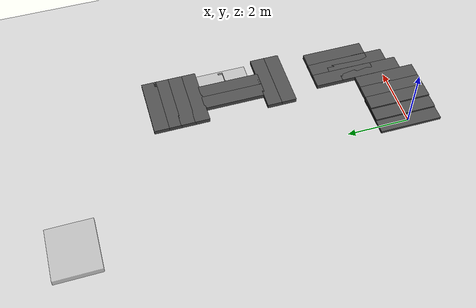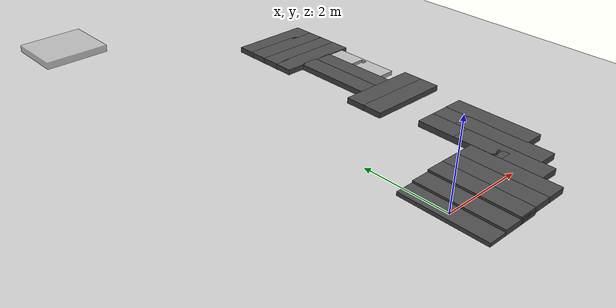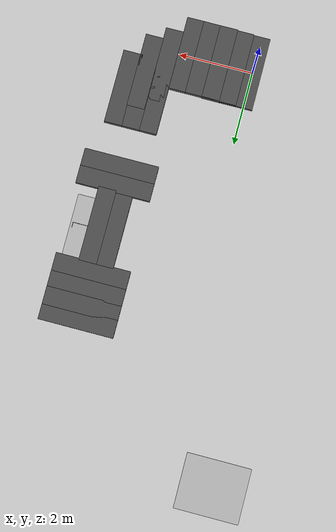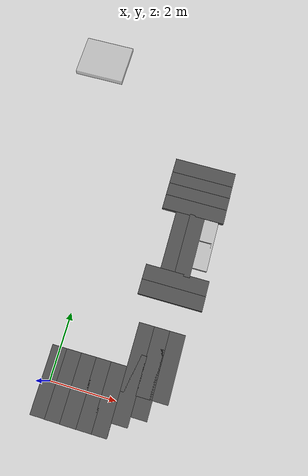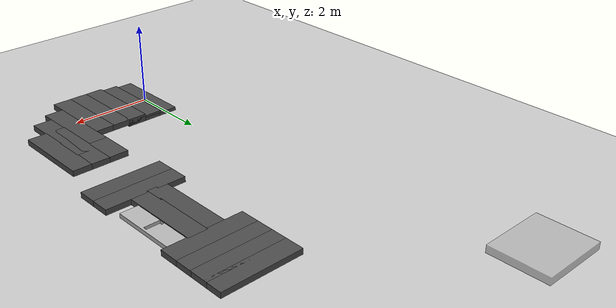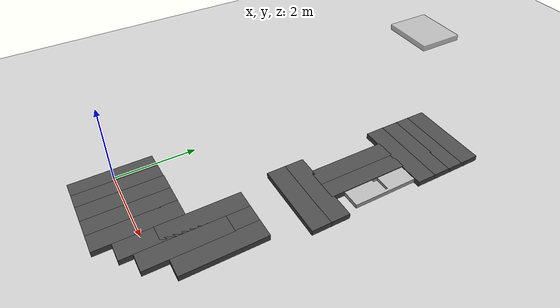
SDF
<sdf version="1.6">
 <world name="default">
  <light name="sun" type="directional">
   <pose>0 0 10 0 -0 0</pose>
   <diffuse>0.8 0.8 0.8 1</diffuse>
   <specular>0.2 0.2 0.2 1</specular>
   <attenuation>
    <range>1000</range>
    <constant>0.9</constant>
    <linear>0.01</linear>
    <quadratic>0.001</quadratic>
   </attenuation>
   <direction>-0.5 0.1 -0.9</direction>
  </light>
  <model name="ground_plane">
   <static>1</static>
   <link name="link">
    <collision name="collision">
     <geometry><plane><normal>0 0 1</normal><size>100 100</size></plane></geometry>
     <surface>
      <contact><collide_bitmask>65535</collide_bitmask></contact>
      <friction><ode><mu>100</mu><mu2>50</mu2></ode></friction>
     </surface>
    </collision>
    <visual name="visual">
     <cast_shadows>0</cast_shadows>
     <geometry><plane><normal>0 0 1</normal><size>100 100</size></plane></geometry>
     <material>
      <script><uri>file://media/materials/scripts/gazebo.material</uri><name>Gazebo/Grey</name></script>
     </material>
    </visual>
   </link>
  </model>
  <scene><ambient>0.4 0.4 0.4 1</ambient><background>0.7 0.7 0.7 1</background><shadows>1</shadows></scene>
  <audio><device>default</device></audio>
  <spherical_coordinates>
   <surface_model>EARTH_WGS84</surface_model>
   <latitude_deg>0</latitude_deg>
   <longitude_deg>0</longitude_deg>
   <elevation>0</elevation>
   <heading_deg>0</heading_deg>
  </spherical_coordinates>
  <model name="asphalt_pallet">
   <static>1</static>
   <link name="link">
    <collision name="collision"><geometry><box><size>0.48 2 0.14</size></box></geometry></collision>
    <visual name="visual">
     <cast_shadows>0</cast_shadows>
     <geometry><box><size>0.48 2 0.14</size></box></geometry>
     <material>
      <script>
       <uri>model://asphalt_plane/materials/scripts</uri>
       <uri>model://asphalt_plane/materials/textures</uri>
       <name>vrc/asphalt</name>
      </script>
     </material>
    </visual>
   </link>
  </model>
  <model name="asphalt_pallet_0">
   <static>1</static>
   <link name="link">
    <collision name="collision"><geometry><box><size>0.48 2 0.14</size></box></geometry></collision>
    <visual name="visual">
     <cast_shadows>0</cast_shadows>
     <geometry><box><size>0.48 2 0.14</size></box></geometry>
     <material>
      <script>
       <uri>model://asphalt_plane/materials/scripts</uri>
       <uri>model://asphalt_plane/materials/textures</uri>
       <name>vrc/asphalt</name>
      </script>
     </material>
    </visual>
   </link>
   <pose>0.9 0 0.05 0 -0 0</pose>
  </model>
  <model name="asphalt_pallet_1">
   <static>1</static>
   <link name="link">
    <collision name="collision"><geometry><box><size>0.48 2 0.14</size></box></geometry></collision>
    <visual name="visual">
     <cast_shadows>0</cast_shadows>
     <geometry><box><size>0.48 2 0.14</size></box></geometry>
     <material>
      <script>
       <uri>model://asphalt_plane/materials/scripts</uri>
       <uri>model://asphalt_plane/materials/textures</uri>
       <name>vrc/asphalt</name>
      </script>
     </material>
    </visual>
   </link>
   <pose>0.45 0 0 0 -0 0</pose>
  </model>
  <model name="asphalt_pallet_2">
   <static>1</static>
   <link name="link">
    <collision name="collision"><geometry><box><size>0.48 2 0.14</size></box></geometry></collision>
    <visual name="visual">
     <cast_shadows>0</cast_shadows>
     <geometry><box><size>0.48 2 0.14</size></box></geometry>
     <material>
      <script>
       <uri>model://asphalt_plane/materials/scripts</uri>
       <uri>model://asphalt_plane/materials/textures</uri>
       <name>vrc/asphalt</name>
      </script>
     </material>
    </visual>
   </link>
   <pose>0.446555 -0.000448 0.05 0 -0 0</pose>
  </model>
  <model name="asphalt_pallet_3">
   <static>1</static>
   <link name="link">
    <collision name="collision"><geometry><box><size>0.48 2 0.14</size></box></geometry></collision>
    <visual name="visual">
     <cast_shadows>0</cast_shadows>
     <geometry><box><size>0.48 2 0.14</size></box></geometry>
     <material>
      <script>
       <uri>model://asphalt_plane/materials/scripts</uri>
       <uri>model://asphalt_plane/materials/textures</uri>
       <name>vrc/asphalt</name>
      </script>
     </material>
    </visual>
   </link>
   <pose>0.9 0 0 0 -0 0</pose>
  </model>
  <model name="asphalt_pallet_4">
   <static>1</static>
   <link name="link">
    <collision name="collision"><geometry><box><size>0.48 2 0.14</size></box></geometry></collision>
    <visual name="visual">
     <cast_shadows>0</cast_shadows>
     <geometry><box><size>0.48 2 0.14</size></box></geometry>
     <material>
      <script>
       <uri>model://asphalt_plane/materials/scripts</uri>
       <uri>model://asphalt_plane/materials/textures</uri>
       <name>vrc/asphalt</name>
      </script>
     </material>
    </visual>
   </link>
   <pose>0.9 0 0.1 0 -0 0</pose>
  </model>
  <model name="asphalt_pallet_5">
   <static>1</static>
   <link name="link">
    <collision name="collision"><geometry><box><size>0.48 2 0.14</size></box></geometry></collision>
    <visual name="visual">
     <cast_shadows>0</cast_shadows>
     <geometry><box><size>0.48 2 0.14</size></box></geometry>
     <material>
      <script>
       <uri>model://asphalt_plane/materials/scripts</uri>
       <uri>model://asphalt_plane/materials/textures</uri>
       <name>vrc/asphalt</name>
      </script>
     </material>
    </visual>
   </link>
   <pose>1.35 0 0.1 0 -0 0</pose>
  </model>
  <model name="asphalt_pallet_5_clone">
   <static>1</static>
   <link name="link">
    <collision name="collision"><geometry><box><size>0.48 2 0.14</size></box></geometry></collision>
    <visual name="visual">
     <cast_shadows>0</cast_shadows>
     <geometry><box><size>0.48 2 0.14</size></box></geometry>
     <material>
      <script>
       <uri>model://asphalt_plane/materials/scripts</uri>
       <uri>model://asphalt_plane/materials/textures</uri>
       <name>vrc/asphalt</name>
      </script>
     </material>
    </visual>
   </link>
   <pose>1.8 0 0.1 0 -0 0</pose>
  </model>
  <model name="asphalt_pallet_5_clone_clone">
   <static>1</static>
   <link name="link">
    <collision name="collision"><geometry><box><size>0.48 2 0.14</size></box></geometry></collision>
    <visual name="visual">
     <cast_shadows>0</cast_shadows>
     <geometry><box><size>0.48 2 0.14</size></box></geometry>
     <material>
      <script>
       <uri>model://asphalt_plane/materials/scripts</uri>
       <uri>model://asphalt_plane/materials/textures</uri>
       <name>vrc/asphalt</name>
      </script>
     </material>
    </visual>
   </link>
   <pose>2.27623 0.422107 0.1 0 -0 0</pose>
  </model>
  <model name="asphalt_pallet_5_clone_clone_0">
   <static>1</static>
   <link name="link">
    <collision name="collision"><geometry><box><size>0.48 2 0.14</size></box></geometry></collision>
    <visual name="visual">
     <cast_shadows>0</cast_shadows>
     <geometry><box><size>0.48 2 0.14</size></box></geometry>
     <material>
      <script>
       <uri>model://asphalt_plane/materials/scripts</uri>
       <uri>model://asphalt_plane/materials/textures</uri>
       <name>vrc/asphalt</name>
      </script>
     </material>
    </visual>
   </link>
   <pose>2.74907 0.725266 0.1 0 -0 0</pose>
  </model>
  <model name="asphalt_pallet_5_clone_clone_1">
   <static>1</static>
   <link name="link">
    <collision name="collision"><geometry><box><size>0.48 2 0.14</size></box></geometry></collision>
    <visual name="visual">
     <cast_shadows>0</cast_shadows>
     <geometry><box><size>0.48 2 0.14</size></box></geometry>
     <material>
      <script>
       <uri>model://asphalt_plane/materials/scripts</uri>
       <uri>model://asphalt_plane/materials/textures</uri>
       <name>vrc/asphalt</name>
      </script>
     </material>
    </visual>
   </link>
   <pose>3.20856 1.3 0.1 0 -0 0</pose>
  </model>
  <model name="asphalt_pallet_5_clone_clone_1_clone">
   <static>1</static>
   <link name="link">
    <collision name="collision"><geometry><box><size>0.48 2 0.14</size></box></geometry></collision>
    <visual name="visual">
     <cast_shadows>0</cast_shadows>
     <geometry><box><size>0.48 2 0.14</size></box></geometry>
     <material>
      <script>
       <uri>model://asphalt_plane/materials/scripts</uri>
       <uri>model://asphalt_plane/materials/textures</uri>
       <name>vrc/asphalt</name>
      </script>
     </material>
    </visual>
   </link>
   <pose>2.27368 1.3 0.1 0 -0 0</pose>
  </model>
  <model name="asphalt_pallet_5_clone_clone_1_clone_0">
   <static>1</static>
   <link name="link">
    <collision name="collision"><geometry><box><size>0.48 2 0.14</size></box></geometry></collision>
    <visual name="visual">
     <cast_shadows>0</cast_shadows>
     <geometry><box><size>0.48 2 0.14</size></box></geometry>
     <material>
      <script>
       <uri>model://asphalt_plane/materials/scripts</uri>
       <uri>model://asphalt_plane/materials/textures</uri>
       <name>vrc/asphalt</name>
      </script>
     </material>
    </visual>
   </link>
   <pose>2.73741 1.3 0.1 0 -0 0</pose>
  </model>
  <model name="asphalt_pallet_6">
   <static>1</static>
   <link name="link">
    <collision name="collision"><geometry><box><size>0.48 2 0.14</size></box></geometry></collision>
    <visual name="visual">
     <cast_shadows>0</cast_shadows>
     <geometry><box><size>0.48 2 0.14</size></box></geometry>
     <material>
      <script>
       <uri>model://asphalt_plane/materials/scripts</uri>
       <uri>model://asphalt_plane/materials/textures</uri>
       <name>vrc/asphalt</name>
      </script>
     </material>
    </visual>
   </link>
   <pose>2.75 3.35 0.05 0 -0 1.57</pose>
  </model>
  <model name="asphalt_pallet_6_clone">
   <static>1</static>
   <link name="link">
    <collision name="collision"><geometry><box><size>0.48 2 0.14</size></box></geometry></collision>
    <visual name="visual">
     <cast_shadows>0</cast_shadows>
     <geometry><box><size>0.48 2 0.14</size></box></geometry>
     <material>
      <script>
       <uri>model://asphalt_plane/materials/scripts</uri>
       <uri>model://asphalt_plane/materials/textures</uri>
       <name>vrc/asphalt</name>
      </script>
     </material>
    </visual>
   </link>
   <pose>2.75 3.82 0.05 0 -0 1.57</pose>
  </model>
  <model name="asphalt_pallet_7">
   <static>1</static>
   <link name="link">
    <collision name="collision"><geometry><box><size>0.48 2 0.14</size></box></geometry></collision>
    <visual name="visual">
     <cast_shadows>0</cast_shadows>
     <geometry><box><size>0.48 2 0.14</size></box></geometry>
     <material>
      <script>
       <uri>model://asphalt_plane/materials/scripts</uri>
       <uri>model://asphalt_plane/materials/textures</uri>
       <name>vrc/asphalt</name>
      </script>
     </material>
    </visual>
   </link>
   <pose>2.9 5 0.05 0 -0 0</pose>
  </model>
  <model name="asphalt_pallet_7_clone">
   <static>1</static>
   <link name="link">
    <collision name="collision"><geometry><box><size>0.48 2 0.14</size></box></geometry></collision>
    <visual name="visual">
     <cast_shadows>0</cast_shadows>
     <geometry><box><size>0.48 2 0.14</size></box></geometry>
     <material>
      <script>
       <uri>model://asphalt_plane/materials/scripts</uri>
       <uri>model://asphalt_plane/materials/textures</uri>
       <name>vrc/asphalt</name>
      </script>
     </material>
    </visual>
   </link>
   <pose>2.45 5 0.05 0 -0 0</pose>
  </model>
  <model name="asphalt_pallet_6_clone_0">
   <static>1</static>
   <link name="link">
    <collision name="collision"><geometry><box><size>0.48 2 0.14</size></box></geometry></collision>
    <visual name="visual">
     <cast_shadows>0</cast_shadows>
     <geometry><box><size>0.48 2 0.14</size></box></geometry>
     <material>
      <script>
       <uri>model://asphalt_plane/materials/scripts</uri>
       <uri>model://asphalt_plane/materials/textures</uri>
       <name>vrc/asphalt</name>
      </script>
     </material>
    </visual>
   </link>
   <pose>2.75 6.2 0.05 0 -0 1.57</pose>
  </model>
  <model name="asphalt_pallet_6_clone_1">
   <static>1</static>
   <link name="link">
    <collision name="collision"><geometry><box><size>0.48 2 0.14</size></box></geometry></collision>
    <visual name="visual">
     <cast_shadows>0</cast_shadows>
     <geometry><box><size>0.48 2 0.14</size></box></geometry>
     <material>
      <script>
       <uri>model://asphalt_plane/materials/scripts</uri>
       <uri>model://asphalt_plane/materials/textures</uri>
       <name>vrc/asphalt</name>
      </script>
     </material>
    </visual>
   </link>
   <pose>2.75 6.65 0.05 0 -0 1.57</pose>
  </model>
  <model name="asphalt_pallet_6_clone_1_clone">
   <static>1</static>
   <link name="link">
    <collision name="collision"><geometry><box><size>0.48 2 0.14</size></box></geometry></collision>
    <visual name="visual">
     <cast_shadows>0</cast_shadows>
     <geometry><box><size>0.48 2 0.14</size></box></geometry>
     <material>
      <script>
       <uri>model://asphalt_plane/materials/scripts</uri>
       <uri>model://asphalt_plane/materials/textures</uri>
       <name>vrc/asphalt</name>
      </script>
     </material>
    </visual>
   </link>
   <pose>2.75 7.1 0.05 0 -0 1.57</pose>
  </model>
  <model name="asphalt_pallet_6_clone_1_clone_clone">
   <static>1</static>
   <link name="link">
    <collision name="collision"><geometry><box><size>0.48 2 0.14</size></box></geometry></collision>
    <visual name="visual">
     <cast_shadows>0</cast_shadows>
     <geometry><box><size>0.48 2 0.14</size></box></geometry>
     <material>
      <script>
       <uri>model://asphalt_plane/materials/scripts</uri>
       <uri>model://asphalt_plane/materials/textures</uri>
       <name>vrc/asphalt</name>
      </script>
     </material>
    </visual>
   </link>
   <pose>2.75 7.5 0.05 0 -0 1.57</pose>
  </model>
  <model name="soft_ground_R">
   <static>1</static>
   <link name="link">
    <collision name="collision">
     <geometry><box><size>1.67009 1.41153 0.334145</size></box></geometry>
     <surface>
      <friction><ode><mu>1</mu><mu2>1</mu2></ode></friction>
      <contact><ode><kp>3500</kp><kd>400</kd></ode></contact>
     </surface>
    </collision>
    <visual name="visual_1">
     <transparency>0.3</transparency>
     <cast_shadows>0</cast_shadows>
     <geometry><box><size>1.67009 1.41153 0.334145</size></box></geometry>
     <material>
      <lighting>1</lighting>
      <script>
       <uri>model://soft_ground_R/materials/scripts</uri>
       <uri>model://soft_ground_R/materials/textures</uri>
       <name>vrc/mudR</name>
      </script>
     </material>
    </visual>
   </link>
   <pose>-1.6536 10.7442 0 0 -0 0</pose>
  </model>
  <model name="hole_terrain">
   <static>1</static>
   <link name="link">
    <collision name="collision">
     <geometry>
      <mesh><uri>model://hole_terrain/mesh/hole_terrain.STL</uri><scale>0.001 0.001 0.001</scale></mesh>
     </geometry>
    </collision>
    <visual name="visual">
     <geometry>
      <mesh><uri>model://hole_terrain/mesh/hole_terrain.STL</uri><scale>0.001 0.001 0.001</scale></mesh>
     </geometry>
    </visual>
   </link>
   <pose>2.19587 7.73036 0 0 0 -1.57</pose>
  </model>
 </world>
</sdf>
